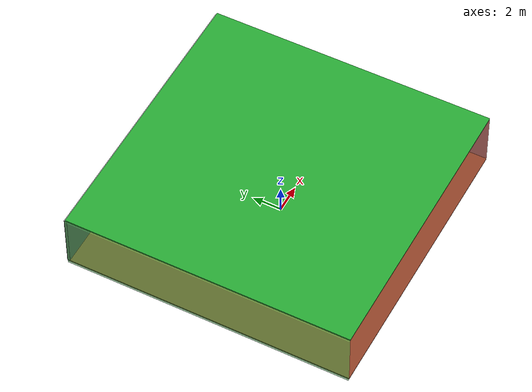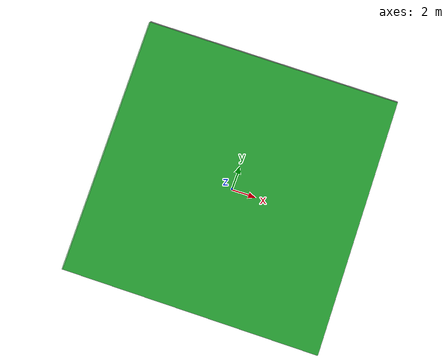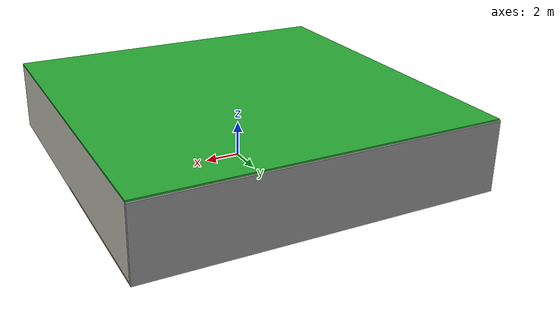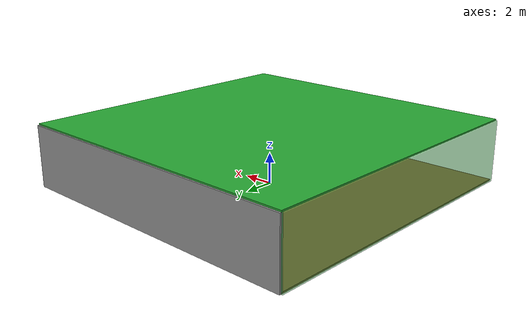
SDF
<sdf version="1.4">
 <world name="default">
  <physics type="ode">
   <max_step_size>0.001</max_step_size>
   <real_time_factor>1</real_time_factor>
   <real_time_update_rate>1000</real_time_update_rate>
   <gravity>0 0 -9.8</gravity>
  </physics>
  <scene><ambient>0.4 0.4 0.4 1</ambient><background>0.7 0.7 0.7 1</background><shadows>1</shadows></scene>
  <model name="Surrounding">
   <static>1</static>
   <link name="Ceiling">
    <collision name="Ceiling_Collision"><geometry><box><size>20 20 0.1</size></box></geometry></collision>
    <visual name="Ceiling_Visual">
     <geometry><box><size>20 20 0.1</size></box></geometry>
     <material>
      <script><uri>file://media/materials/scripts/gazebo.material</uri><name>Gazebo/Green</name></script>
     </material>
    </visual>
    <pose>0 0 4.05 0 0 0</pose>
   </link>
   <link name="Wall_South">
    <collision name="Wall_South_Collision">
     <geometry><box><size>20 0 4</size></box></geometry>
     <pose>0 0 2 0 -0 0</pose>
    </collision>
    <visual name="Wall_South_Visual">
     <pose>0 0 2 0 -0 0</pose>
     <geometry><box><size>20 0 4</size></box></geometry>
     <material>
      <script><uri>file://media/materials/scripts/gazebo.material</uri><name>Gazebo/RedTransparent</name></script>
     </material>
    </visual>
    <velocity_decay><linear>0</linear><angular>0</angular></velocity_decay>
    <pose>0 -10 0 0 -0 0</pose>
   </link>
   <link name="Wall_East">
    <collision name="Wall_21_Collision">
     <geometry><box><size>20 0 4</size></box></geometry>
     <pose>0 0 2 0 -0 0</pose>
    </collision>
    <visual name="Wall_21_Visual">
     <pose>0 0 2 0 -0 0</pose>
     <geometry><box><size>20 0 4</size></box></geometry>
     <material>
      <script><uri>file://media/materials/scripts/gazebo.material</uri><name>Gazebo/PaintedWall</name></script>
     </material>
    </visual>
    <velocity_decay><linear>0</linear><angular>0</angular></velocity_decay>
    <pose>10 0 0 0 -0 1.5708</pose>
   </link>
   <link name="Wall_North">
    <collision name="Wall_22_Collision">
     <geometry><box><size>20 0.2 4</size></box></geometry>
     <pose>0 0 2 0 -0 0</pose>
    </collision>
    <visual name="Wall_22_Visual">
     <pose>0 0 2 0 -0 0</pose>
     <geometry><box><size>20 0.2 4</size></box></geometry>
     <material>
      <script><uri>file://media/materials/scripts/gazebo.material</uri><name>Gazebo/Grey</name></script>
     </material>
    </visual>
    <velocity_decay><linear>0</linear><angular>0</angular></velocity_decay>
    <pose>0 10 0 0 -0 0</pose>
   </link>
   <link name="Wall_West">
    <collision name="Wall_23_Collision">
     <geometry><box><size>20 0.2 4</size></box></geometry>
     <pose>0 0 2 0 -0 0</pose>
    </collision>
    <visual name="Wall_23_Visual">
     <pose>0 0 2 0 -0 0</pose>
     <geometry><box><size>20 0.2 4</size></box></geometry>
     <material>
      <script><uri>file://media/materials/scripts/gazebo.material</uri><name>Gazebo/GreenTransparent</name></script>
     </material>
    </visual>
    <velocity_decay><linear>0</linear><angular>0</angular></velocity_decay>
    <pose>-10 0 0 0 0 -1.5708</pose>
   </link>
   <link name="Ground_link">
    <collision name="collision">
     <pose>0 0 .05 0 -0 0</pose>
     <geometry><box><size>20 20 0.1</size></box></geometry>
    </collision>
    <visual name="visual">
     <pose>0 0 .05 0 -0 0</pose>
     <geometry><box><size>20 20 0.1</size></box></geometry>
     <material>
      <script><uri>file://media/materials/scripts/gazebo.material</uri><name>Gazebo/WoodFloor</name></script>
     </material>
    </visual>
   </link>
   <static>1</static>
  </model>
  <spherical_coordinates>
   <surface_model>EARTH_WGS84</surface_model>
   <latitude_deg>0</latitude_deg>
   <longitude_deg>0</longitude_deg>
   <elevation>0</elevation>
   <heading_deg>0</heading_deg>
  </spherical_coordinates>
  <light name="lightball_0" type="diffuse">
   <diffuse>0.8 0.8 0.8 1</diffuse>
   <specular>0.2 0.2 0.2 1</specular>
   <attenuation>
    <range>100</range>
    <constant>0.7</constant>
    <linear>0.01</linear>
    <quadratic>0.001</quadratic>
   </attenuation>
   <direction>-0.5 0.1 -0.9</direction>
   <pose>5.34374396209 -1.09891914499 2.90111848254 0 0 0</pose>
  </light>
  <light name="lightball_1" type="diffuse">
   <diffuse>0.8 0.8 0.8 1</diffuse>
   <specular>0.2 0.2 0.2 1</specular>
   <attenuation>
    <range>100</range>
    <constant>0.7</constant>
    <linear>0.01</linear>
    <quadratic>0.001</quadratic>
   </attenuation>
   <direction>-0.5 0.1 -0.9</direction>
   <pose>-2.65045028534 -4.75997859658 1.18816046825 0 0 0</pose>
  </light>
  <light name="lightball_2" type="diffuse">
   <diffuse>0.8 0.8 0.8 1</diffuse>
   <specular>0.2 0.2 0.2 1</specular>
   <attenuation>
    <range>100</range>
    <constant>0.7</constant>
    <linear>0.01</linear>
    <quadratic>0.001</quadratic>
   </attenuation>
   <direction>-0.5 0.1 -0.9</direction>
   <pose>0.78847385765 6.56985008651 2.89816571781 0 0 0</pose>
  </light>
  <light name="lightball_3" type="diffuse">
   <diffuse>0.8 0.8 0.8 1</diffuse>
   <specular>0.2 0.2 0.2 1</specular>
   <attenuation>
    <range>100</range>
    <constant>0.7</constant>
    <linear>0.01</linear>
    <quadratic>0.001</quadratic>
   </attenuation>
   <direction>-0.5 0.1 -0.9</direction>
   <pose>8.36292246008 -9.04027246968 3.17906706507 0 0 0</pose>
  </light>
  <light name="lightball_4" type="diffuse">
   <diffuse>0.8 0.8 0.8 1</diffuse>
   <specular>0.2 0.2 0.2 1</specular>
   <attenuation>
    <range>100</range>
    <constant>0.7</constant>
    <linear>0.01</linear>
    <quadratic>0.001</quadratic>
   </attenuation>
   <direction>-0.5 0.1 -0.9</direction>
   <pose>1.38707856127 -4.24745607958 3.8675934871 0 0 0</pose>
  </light>
  <light name="lightball_5" type="diffuse">
   <diffuse>0.8 0.8 0.8 1</diffuse>
   <specular>0.2 0.2 0.2 1</specular>
   <attenuation>
    <range>100</range>
    <constant>0.7</constant>
    <linear>0.01</linear>
    <quadratic>0.001</quadratic>
   </attenuation>
   <direction>-0.5 0.1 -0.9</direction>
   <pose>1.56451374747 -9.40106261932 0.950330219213 0 0 0</pose>
  </light>
  <light name="lightball_6" type="diffuse">
   <diffuse>0.8 0.8 0.8 1</diffuse>
   <specular>0.2 0.2 0.2 1</specular>
   <attenuation>
    <range>100</range>
    <constant>0.7</constant>
    <linear>0.01</linear>
    <quadratic>0.001</quadratic>
   </attenuation>
   <direction>-0.5 0.1 -0.9</direction>
   <pose>-3.96354837445 2.05954914606 0.737986981787 0 0 0</pose>
  </light>
  <light name="lightball_7" type="diffuse">
   <diffuse>0.8 0.8 0.8 1</diffuse>
   <specular>0.2 0.2 0.2 1</specular>
   <attenuation>
    <range>100</range>
    <constant>0.7</constant>
    <linear>0.01</linear>
    <quadratic>0.001</quadratic>
   </attenuation>
   <direction>-0.5 0.1 -0.9</direction>
   <pose>1.30813712799 7.50322851275 2.06811703969 0 0 0</pose>
  </light>
  <light name="lightball_8" type="diffuse">
   <diffuse>0.8 0.8 0.8 1</diffuse>
   <specular>0.2 0.2 0.2 1</specular>
   <attenuation>
    <range>100</range>
    <constant>0.7</constant>
    <linear>0.01</linear>
    <quadratic>0.001</quadratic>
   </attenuation>
   <direction>-0.5 0.1 -0.9</direction>
   <pose>-7.71979847683 3.78796226148 2.96568463023 0 0 0</pose>
  </light>
  <light name="lightball_9" type="diffuse">
   <diffuse>0.8 0.8 0.8 1</diffuse>
   <specular>0.2 0.2 0.2 1</specular>
   <attenuation>
    <range>100</range>
    <constant>0.7</constant>
    <linear>0.01</linear>
    <quadratic>0.001</quadratic>
   </attenuation>
   <direction>-0.5 0.1 -0.9</direction>
   <pose>1.19747472111 9.58734511301 3.28327004037 0 0 0</pose>
  </light>
  <include><uri>model://table</uri><pose>-4.55436258194 7.0367831381 0 0 0 1.07329447988</pose></include>
 </world>
</sdf>

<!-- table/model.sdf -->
<sdf version="1.5">
  <model name="table">
    <static>true</static>
    <link name="link">
      <collision name="surface">
        <pose>0 0 1.0 0 0 0</pose>
        <geometry>
          <box>
            <size>1.5 0.8 0.03</size>
          </box>
        </geometry>
        <surface>
          <friction>
            <ode>
              <mu>0.6</mu>
              <mu2>0.6</mu2>
            </ode>
          </friction>
        </surface>
      </collision>
      <visual name="visual1">
        <pose>0 0 1.0 0 0 0</pose>
        <geometry>
          <box>
            <size>1.5 0.8 0.03</size>
          </box>
        </geometry>
        <material>
          <script>
            <uri>model://media/materials/scripts/gazebo.material</uri>
            <name>Gazebo/Wood</name>
          </script>
        </material>
      </visual>
      <collision name="front_left_leg">
        <pose>0.68 0.38 0.5 0 0 0</pose>
        <geometry>
          <cylinder>
            <radius>0.02</radius>
            <length>1.0</length>
          </cylinder>
        </geometry>
      </collision>
      <visual name="front_left_leg">
        <pose>0.68 0.38 0.5 0 0 0</pose>
        <geometry>
          <cylinder>
            <radius>0.02</radius>
            <length>1.0</length>
          </cylinder>
        </geometry>
        <material>
          <script>
            <uri>model://media/materials/scripts/gazebo.material</uri>
            <name>Gazebo/Grey</name>
          </script>
        </material>
      </visual>
      <collision name="front_right_leg">
        <pose>0.68 -0.38 0.5 0 0 0</pose>
        <geometry>
          <cylinder>
            <radius>0.02</radius>
            <length>1.0</length>
          </cylinder>
        </geometry>
      </collision>
      <visual name="front_right_leg">
        <pose>0.68 -0.38 0.5 0 0 0</pose>
        <geometry>
          <cylinder>
            <radius>0.02</radius>
            <length>1.0</length>
          </cylinder>
        </geometry>
        <material>
          <script>
            <uri>model://media/materials/scripts/gazebo.material</uri>
            <name>Gazebo/Grey</name>
          </script>
        </material>
      </visual>
      <collision name="back_right_leg">
        <pose>-0.68 -0.38 0.5 0 0 0</pose>
        <geometry>
          <cylinder>
            <radius>0.02</radius>
            <length>1.0</length>
          </cylinder>
        </geometry>
      </collision>
      <visual name="back_right_leg">
        <pose>-0.68 -0.38 0.5 0 0 0</pose>
        <geometry>
          <cylinder>
            <radius>0.02</radius>
            <length>1.0</length>
          </cylinder>
        </geometry>
        <material>
          <script>
            <uri>model://media/materials/scripts/gazebo.material</uri>
            <name>Gazebo/Grey</name>
          </script>
        </material>
      </visual>
      <collision name="back_left_leg">
        <pose>-0.68 0.38 0.5 0 0 0</pose>
        <geometry>
          <cylinder>
            <radius>0.02</radius>
            <length>1.0</length>
          </cylinder>
        </geometry>
      </collision>
      <visual name="back_left_leg">
        <pose>-0.68 0.38 0.5 0 0 0</pose>
        <geometry>
          <cylinder>
            <radius>0.02</radius>
            <length>1.0</length>
          </cylinder>
        </geometry>
        <material>
          <script>
            <uri>model://media/materials/scripts/gazebo.material</uri>
            <name>Gazebo/Grey</name>
          </script>
        </material>
      </visual>
    </link>
  </model>
</sdf>
